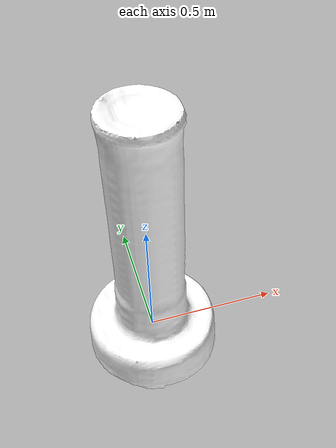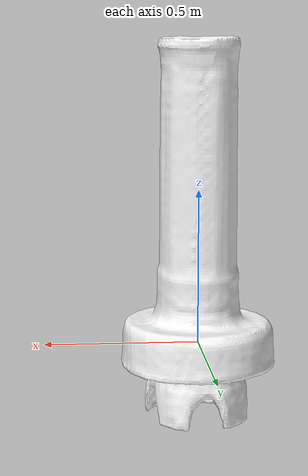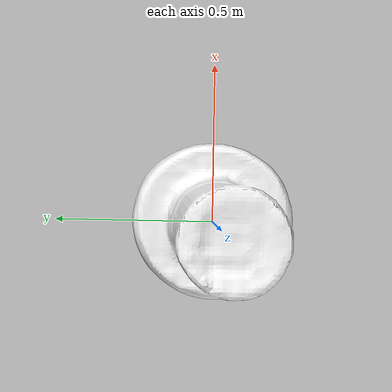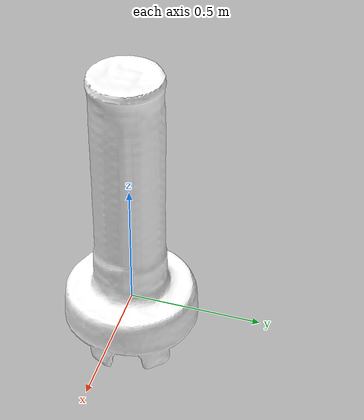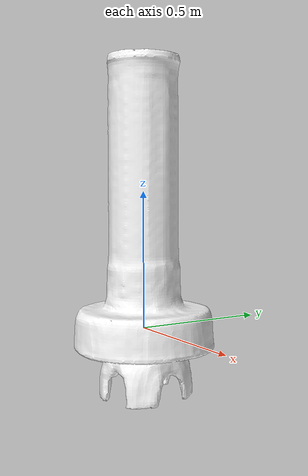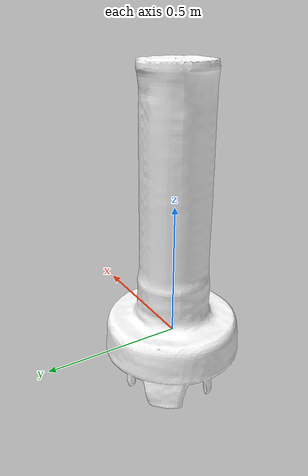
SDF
<?xml version="1.0" ?>
<sdf version="1.6">
    <model name="surmark46104white">
        <link name="link">
            <inertial>
                <pose>0 0 0 0 0 0</pose>
                <mass>18.15</mass>
                <inertia>
                    <ixx>2.316</ixx>
                    <ixy>0</ixy>
                    <ixz>0</ixz>
                    <iyy>2.316</iyy>
                    <iyz>0</iyz>
                    <izz>0.225</izz>
                </inertia>
            </inertial>
            <collision name="collision_inner">
                <pose>0 0 0.3637 0 0 0</pose>
                <geometry>
                    <cylinder>
                        <radius>0.15</radius>
                        <length>1.26</length>
                    </cylinder>
                </geometry>
            </collision>
            <collision name="collision_outer">
                <pose>0 0 -0.1117 0 0 0</pose>
                <geometry>
                    <cylinder>
                        <radius>0.24</radius>
                        <length>0.15</length>
                    </cylinder>
                </geometry>
            </collision>
            <visual name="visual">
                <pose>0 0 0 0 0 0</pose>
                <geometry>
                    <mesh>
                        <uri>meshes/white_surmark.dae</uri>
                    </mesh>
                </geometry>
            </visual>
        </link>
    </model>
</sdf>
